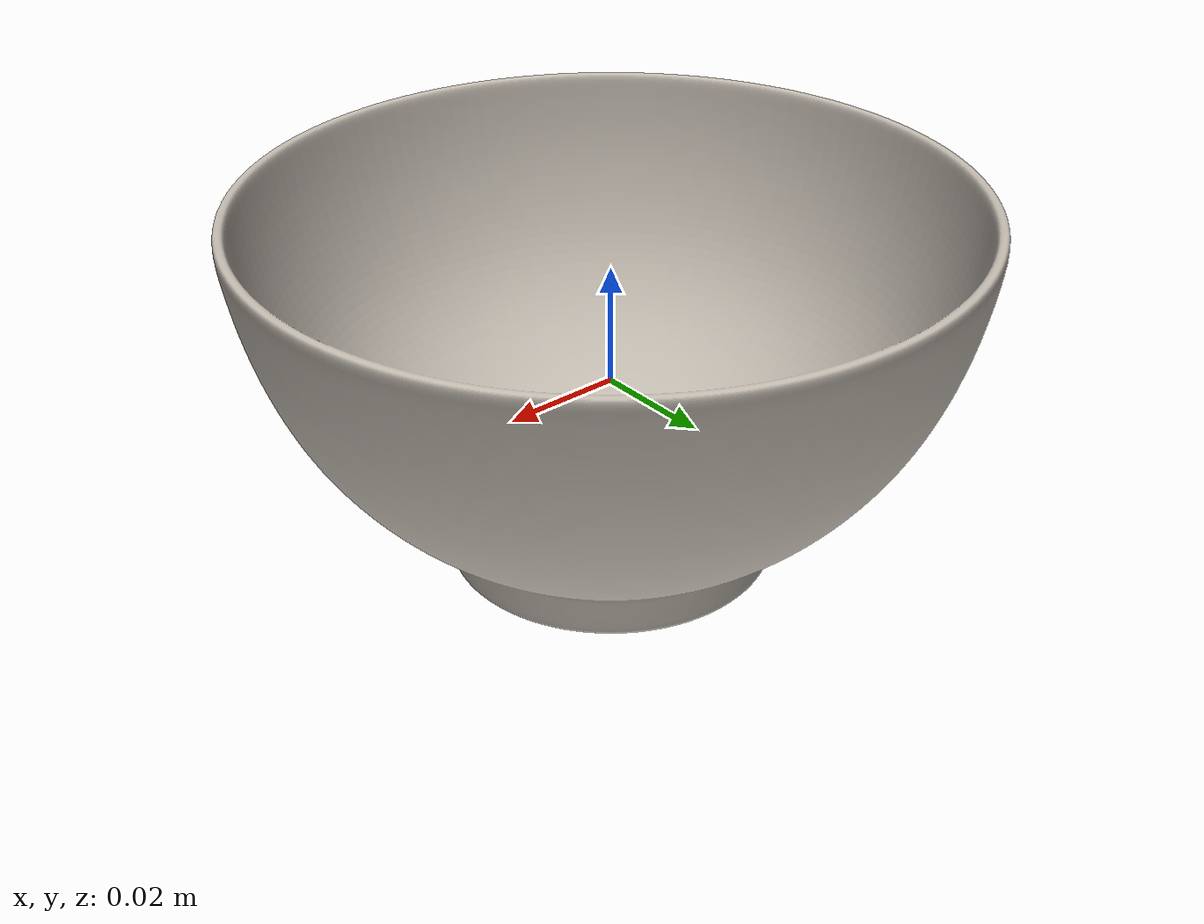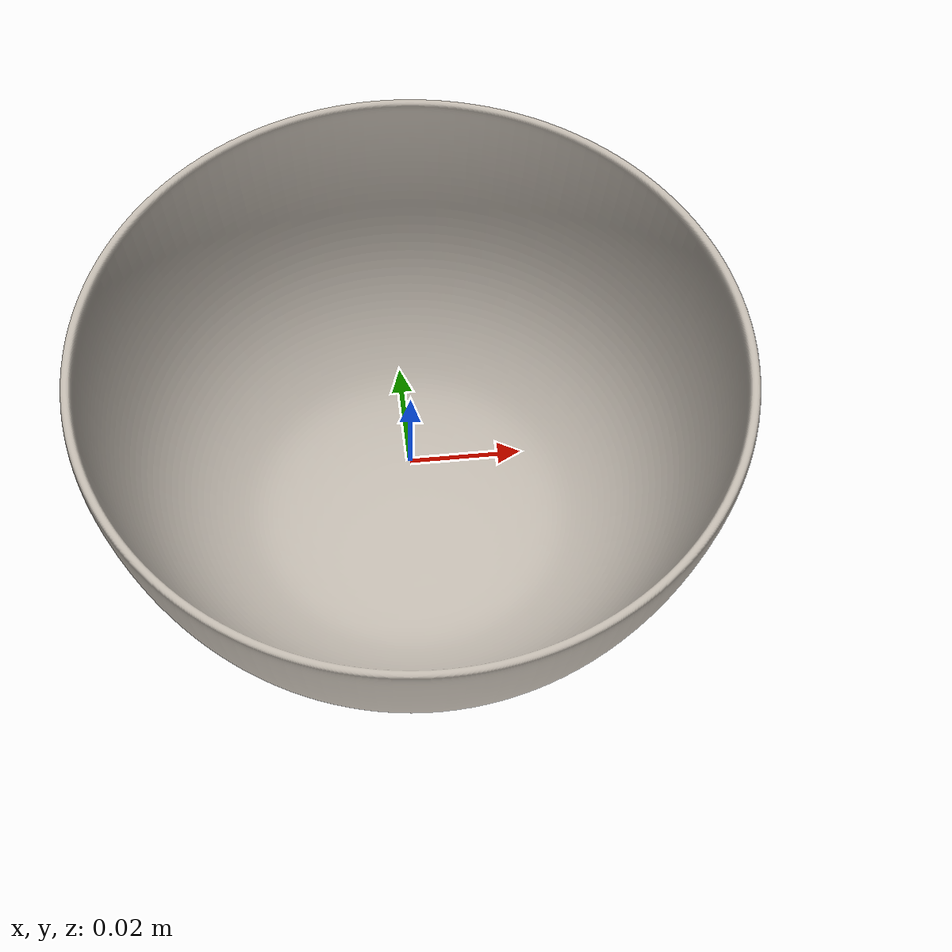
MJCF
<mujoco model="bowl_35">
  <asset>
    <mesh file="visual/model_normalized_0.obj" name="model_normalized_0_vis" scale="0.11999999999999994 0.11999999999999994 0.11999999999999994" refquat="1.0 0.0 0.0 0.0"/>
    <mesh file="collision/model_normalized_collision_22.obj" name="model_normalized_collision_22._coll" scale="0.11999999999999994 0.11999999999999994 0.11999999999999994" refquat="1.0 0.0 0.0 0.0"/>
    <mesh file="collision/model_normalized_collision_23.obj" name="model_normalized_collision_23._coll" scale="0.11999999999999994 0.11999999999999994 0.11999999999999994" refquat="1.0 0.0 0.0 0.0"/>
    <mesh file="collision/model_normalized_collision_21.obj" name="model_normalized_collision_21._coll" scale="0.11999999999999994 0.11999999999999994 0.11999999999999994" refquat="1.0 0.0 0.0 0.0"/>
    <mesh file="collision/model_normalized_collision_20.obj" name="model_normalized_collision_20._coll" scale="0.11999999999999994 0.11999999999999994 0.11999999999999994" refquat="1.0 0.0 0.0 0.0"/>
    <mesh file="collision/model_normalized_collision_24.obj" name="model_normalized_collision_24._coll" scale="0.11999999999999994 0.11999999999999994 0.11999999999999994" refquat="1.0 0.0 0.0 0.0"/>
    <mesh file="collision/model_normalized_collision_30.obj" name="model_normalized_collision_30._coll" scale="0.11999999999999994 0.11999999999999994 0.11999999999999994" refquat="1.0 0.0 0.0 0.0"/>
    <mesh file="collision/model_normalized_collision_18.obj" name="model_normalized_collision_18._coll" scale="0.11999999999999994 0.11999999999999994 0.11999999999999994" refquat="1.0 0.0 0.0 0.0"/>
    <mesh file="collision/model_normalized_collision_19.obj" name="model_normalized_collision_19._coll" scale="0.11999999999999994 0.11999999999999994 0.11999999999999994" refquat="1.0 0.0 0.0 0.0"/>
    <mesh file="collision/model_normalized_collision_31.obj" name="model_normalized_collision_31._coll" scale="0.11999999999999994 0.11999999999999994 0.11999999999999994" refquat="1.0 0.0 0.0 0.0"/>
    <mesh file="collision/model_normalized_collision_25.obj" name="model_normalized_collision_25._coll" scale="0.11999999999999994 0.11999999999999994 0.11999999999999994" refquat="1.0 0.0 0.0 0.0"/>
    <mesh file="collision/model_normalized_collision_27.obj" name="model_normalized_collision_27._coll" scale="0.11999999999999994 0.11999999999999994 0.11999999999999994" refquat="1.0 0.0 0.0 0.0"/>
    <mesh file="collision/model_normalized_collision_26.obj" name="model_normalized_collision_26._coll" scale="0.11999999999999994 0.11999999999999994 0.11999999999999994" refquat="1.0 0.0 0.0 0.0"/>
    <mesh file="collision/model_normalized_collision_9.obj" name="model_normalized_collision_9._coll" scale="0.11999999999999994 0.11999999999999994 0.11999999999999994" refquat="1.0 0.0 0.0 0.0"/>
    <mesh file="collision/model_normalized_collision_8.obj" name="model_normalized_collision_8._coll" scale="0.11999999999999994 0.11999999999999994 0.11999999999999994" refquat="1.0 0.0 0.0 0.0"/>
    <mesh file="collision/model_normalized_collision_6.obj" name="model_normalized_collision_6._coll" scale="0.11999999999999994 0.11999999999999994 0.11999999999999994" refquat="1.0 0.0 0.0 0.0"/>
    <mesh file="collision/model_normalized_collision_7.obj" name="model_normalized_collision_7._coll" scale="0.11999999999999994 0.11999999999999994 0.11999999999999994" refquat="1.0 0.0 0.0 0.0"/>
    <mesh file="collision/model_normalized_collision_5.obj" name="model_normalized_collision_5._coll" scale="0.11999999999999994 0.11999999999999994 0.11999999999999994" refquat="1.0 0.0 0.0 0.0"/>
    <mesh file="collision/model_normalized_collision_4.obj" name="model_normalized_collision_4._coll" scale="0.11999999999999994 0.11999999999999994 0.11999999999999994" refquat="1.0 0.0 0.0 0.0"/>
    <mesh file="collision/model_normalized_collision_0.obj" name="model_normalized_collision_0._coll" scale="0.11999999999999994 0.11999999999999994 0.11999999999999994" refquat="1.0 0.0 0.0 0.0"/>
    <mesh file="collision/model_normalized_collision_1.obj" name="model_normalized_collision_1._coll" scale="0.11999999999999994 0.11999999999999994 0.11999999999999994" refquat="1.0 0.0 0.0 0.0"/>
    <mesh file="collision/model_normalized_collision_3.obj" name="model_normalized_collision_3._coll" scale="0.11999999999999994 0.11999999999999994 0.11999999999999994" refquat="1.0 0.0 0.0 0.0"/>
    <mesh file="collision/model_normalized_collision_2.obj" name="model_normalized_collision_2._coll" scale="0.11999999999999994 0.11999999999999994 0.11999999999999994" refquat="1.0 0.0 0.0 0.0"/>
    <mesh file="collision/model_normalized_collision_17.obj" name="model_normalized_collision_17._coll" scale="0.11999999999999994 0.11999999999999994 0.11999999999999994" refquat="1.0 0.0 0.0 0.0"/>
    <mesh file="collision/model_normalized_collision_16.obj" name="model_normalized_collision_16._coll" scale="0.11999999999999994 0.11999999999999994 0.11999999999999994" refquat="1.0 0.0 0.0 0.0"/>
    <mesh file="collision/model_normalized_collision_28.obj" name="model_normalized_collision_28._coll" scale="0.11999999999999994 0.11999999999999994 0.11999999999999994" refquat="1.0 0.0 0.0 0.0"/>
    <mesh file="collision/model_normalized_collision_14.obj" name="model_normalized_collision_14._coll" scale="0.11999999999999994 0.11999999999999994 0.11999999999999994" refquat="1.0 0.0 0.0 0.0"/>
    <mesh file="collision/model_normalized_collision_15.obj" name="model_normalized_collision_15._coll" scale="0.11999999999999994 0.11999999999999994 0.11999999999999994" refquat="1.0 0.0 0.0 0.0"/>
    <mesh file="collision/model_normalized_collision_29.obj" name="model_normalized_collision_29._coll" scale="0.11999999999999994 0.11999999999999994 0.11999999999999994" refquat="1.0 0.0 0.0 0.0"/>
    <mesh file="collision/model_normalized_collision_11.obj" name="model_normalized_collision_11._coll" scale="0.11999999999999994 0.11999999999999994 0.11999999999999994" refquat="1.0 0.0 0.0 0.0"/>
    <mesh file="collision/model_normalized_collision_10.obj" name="model_normalized_collision_10._coll" scale="0.11999999999999994 0.11999999999999994 0.11999999999999994" refquat="1.0 0.0 0.0 0.0"/>
    <mesh file="collision/model_normalized_collision_12.obj" name="model_normalized_collision_12._coll" scale="0.11999999999999994 0.11999999999999994 0.11999999999999994" refquat="1.0 0.0 0.0 0.0"/>
    <mesh file="collision/model_normalized_collision_13.obj" name="model_normalized_collision_13._coll" scale="0.11999999999999994 0.11999999999999994 0.11999999999999994" refquat="1.0 0.0 0.0 0.0"/>
    <texture type="2d" name="image0" file="visual/image0.png"/>
    <material name="default.002" texture="image0" specular="0.5" shininess="0.07071068"/>
  </asset>
  <worldbody>
  <body>
      <body name="object">
        <geom solimp="0.998 0.998 0.001" solref="0.001 1" density="100" friction="0.95 0.3 0.1" type="mesh" mesh="model_normalized_0_vis" conaffinity="0" contype="0" group="1" material="default.002"/>
        <geom solimp="0.998 0.998 0.001" solref="0.001 1" density="100" friction="0.95 0.3 0.1" type="mesh" mesh="model_normalized_collision_22._coll" group="0" rgba="0.8 0.8 0.8 0.0"/>
        <geom solimp="0.998 0.998 0.001" solref="0.001 1" density="100" friction="0.95 0.3 0.1" type="mesh" mesh="model_normalized_collision_23._coll" group="0" rgba="0.8 0.8 0.8 0.0"/>
        <geom solimp="0.998 0.998 0.001" solref="0.001 1" density="100" friction="0.95 0.3 0.1" type="mesh" mesh="model_normalized_collision_21._coll" group="0" rgba="0.8 0.8 0.8 0.0"/>
        <geom solimp="0.998 0.998 0.001" solref="0.001 1" density="100" friction="0.95 0.3 0.1" type="mesh" mesh="model_normalized_collision_20._coll" group="0" rgba="0.8 0.8 0.8 0.0"/>
        <geom solimp="0.998 0.998 0.001" solref="0.001 1" density="100" friction="0.95 0.3 0.1" type="mesh" mesh="model_normalized_collision_24._coll" group="0" rgba="0.8 0.8 0.8 0.0"/>
        <geom solimp="0.998 0.998 0.001" solref="0.001 1" density="100" friction="0.95 0.3 0.1" type="mesh" mesh="model_normalized_collision_30._coll" group="0" rgba="0.8 0.8 0.8 0.0"/>
        <geom solimp="0.998 0.998 0.001" solref="0.001 1" density="100" friction="0.95 0.3 0.1" type="mesh" mesh="model_normalized_collision_18._coll" group="0" rgba="0.8 0.8 0.8 0.0"/>
        <geom solimp="0.998 0.998 0.001" solref="0.001 1" density="100" friction="0.95 0.3 0.1" type="mesh" mesh="model_normalized_collision_19._coll" group="0" rgba="0.8 0.8 0.8 0.0"/>
        <geom solimp="0.998 0.998 0.001" solref="0.001 1" density="100" friction="0.95 0.3 0.1" type="mesh" mesh="model_normalized_collision_31._coll" group="0" rgba="0.8 0.8 0.8 0.0"/>
        <geom solimp="0.998 0.998 0.001" solref="0.001 1" density="100" friction="0.95 0.3 0.1" type="mesh" mesh="model_normalized_collision_25._coll" group="0" rgba="0.8 0.8 0.8 0.0"/>
        <geom solimp="0.998 0.998 0.001" solref="0.001 1" density="100" friction="0.95 0.3 0.1" type="mesh" mesh="model_normalized_collision_27._coll" group="0" rgba="0.8 0.8 0.8 0.0"/>
        <geom solimp="0.998 0.998 0.001" solref="0.001 1" density="100" friction="0.95 0.3 0.1" type="mesh" mesh="model_normalized_collision_26._coll" group="0" rgba="0.8 0.8 0.8 0.0"/>
        <geom solimp="0.998 0.998 0.001" solref="0.001 1" density="100" friction="0.95 0.3 0.1" type="mesh" mesh="model_normalized_collision_9._coll" group="0" rgba="0.8 0.8 0.8 0.0"/>
        <geom solimp="0.998 0.998 0.001" solref="0.001 1" density="100" friction="0.95 0.3 0.1" type="mesh" mesh="model_normalized_collision_8._coll" group="0" rgba="0.8 0.8 0.8 0.0"/>
        <geom solimp="0.998 0.998 0.001" solref="0.001 1" density="100" friction="0.95 0.3 0.1" type="mesh" mesh="model_normalized_collision_6._coll" group="0" rgba="0.8 0.8 0.8 0.0"/>
        <geom solimp="0.998 0.998 0.001" solref="0.001 1" density="100" friction="0.95 0.3 0.1" type="mesh" mesh="model_normalized_collision_7._coll" group="0" rgba="0.8 0.8 0.8 0.0"/>
        <geom solimp="0.998 0.998 0.001" solref="0.001 1" density="100" friction="0.95 0.3 0.1" type="mesh" mesh="model_normalized_collision_5._coll" group="0" rgba="0.8 0.8 0.8 0.0"/>
        <geom solimp="0.998 0.998 0.001" solref="0.001 1" density="100" friction="0.95 0.3 0.1" type="mesh" mesh="model_normalized_collision_4._coll" group="0" rgba="0.8 0.8 0.8 0.0"/>
        <geom solimp="0.998 0.998 0.001" solref="0.001 1" density="100" friction="0.95 0.3 0.1" type="mesh" mesh="model_normalized_collision_0._coll" group="0" rgba="0.8 0.8 0.8 0.0"/>
        <geom solimp="0.998 0.998 0.001" solref="0.001 1" density="100" friction="0.95 0.3 0.1" type="mesh" mesh="model_normalized_collision_1._coll" group="0" rgba="0.8 0.8 0.8 0.0"/>
        <geom solimp="0.998 0.998 0.001" solref="0.001 1" density="100" friction="0.95 0.3 0.1" type="mesh" mesh="model_normalized_collision_3._coll" group="0" rgba="0.8 0.8 0.8 0.0"/>
        <geom solimp="0.998 0.998 0.001" solref="0.001 1" density="100" friction="0.95 0.3 0.1" type="mesh" mesh="model_normalized_collision_2._coll" group="0" rgba="0.8 0.8 0.8 0.0"/>
        <geom solimp="0.998 0.998 0.001" solref="0.001 1" density="100" friction="0.95 0.3 0.1" type="mesh" mesh="model_normalized_collision_17._coll" group="0" rgba="0.8 0.8 0.8 0.0"/>
        <geom solimp="0.998 0.998 0.001" solref="0.001 1" density="100" friction="0.95 0.3 0.1" type="mesh" mesh="model_normalized_collision_16._coll" group="0" rgba="0.8 0.8 0.8 0.0"/>
        <geom solimp="0.998 0.998 0.001" solref="0.001 1" density="100" friction="0.95 0.3 0.1" type="mesh" mesh="model_normalized_collision_28._coll" group="0" rgba="0.8 0.8 0.8 0.0"/>
        <geom solimp="0.998 0.998 0.001" solref="0.001 1" density="100" friction="0.95 0.3 0.1" type="mesh" mesh="model_normalized_collision_14._coll" group="0" rgba="0.8 0.8 0.8 0.0"/>
        <geom solimp="0.998 0.998 0.001" solref="0.001 1" density="100" friction="0.95 0.3 0.1" type="mesh" mesh="model_normalized_collision_15._coll" group="0" rgba="0.8 0.8 0.8 0.0"/>
        <geom solimp="0.998 0.998 0.001" solref="0.001 1" density="100" friction="0.95 0.3 0.1" type="mesh" mesh="model_normalized_collision_29._coll" group="0" rgba="0.8 0.8 0.8 0.0"/>
        <geom solimp="0.998 0.998 0.001" solref="0.001 1" density="100" friction="0.95 0.3 0.1" type="mesh" mesh="model_normalized_collision_11._coll" group="0" rgba="0.8 0.8 0.8 0.0"/>
        <geom solimp="0.998 0.998 0.001" solref="0.001 1" density="100" friction="0.95 0.3 0.1" type="mesh" mesh="model_normalized_collision_10._coll" group="0" rgba="0.8 0.8 0.8 0.0"/>
        <geom solimp="0.998 0.998 0.001" solref="0.001 1" density="100" friction="0.95 0.3 0.1" type="mesh" mesh="model_normalized_collision_12._coll" group="0" rgba="0.8 0.8 0.8 0.0"/>
        <geom solimp="0.998 0.998 0.001" solref="0.001 1" density="100" friction="0.95 0.3 0.1" type="mesh" mesh="model_normalized_collision_13._coll" group="0" rgba="0.8 0.8 0.8 0.0"/>
      </body>
      <site rgba="0 0 0 0" size="0.005" pos="0.0 0.0001208628000000022 -0.030677524799999988" name="bottom_site"/>
      <site rgba="0 0 0 0" size="0.005" pos="0.0 0.0001208628000000022 0.030799796399999985" name="top_site"/>
      <site rgba="0 0 0 0" size="0.005" pos="0.058809813599999976 0.059051547599999976 6.113579999999838e-05" name="horizontal_radius_site"/>
    </body>
    </worldbody>
</mujoco>
